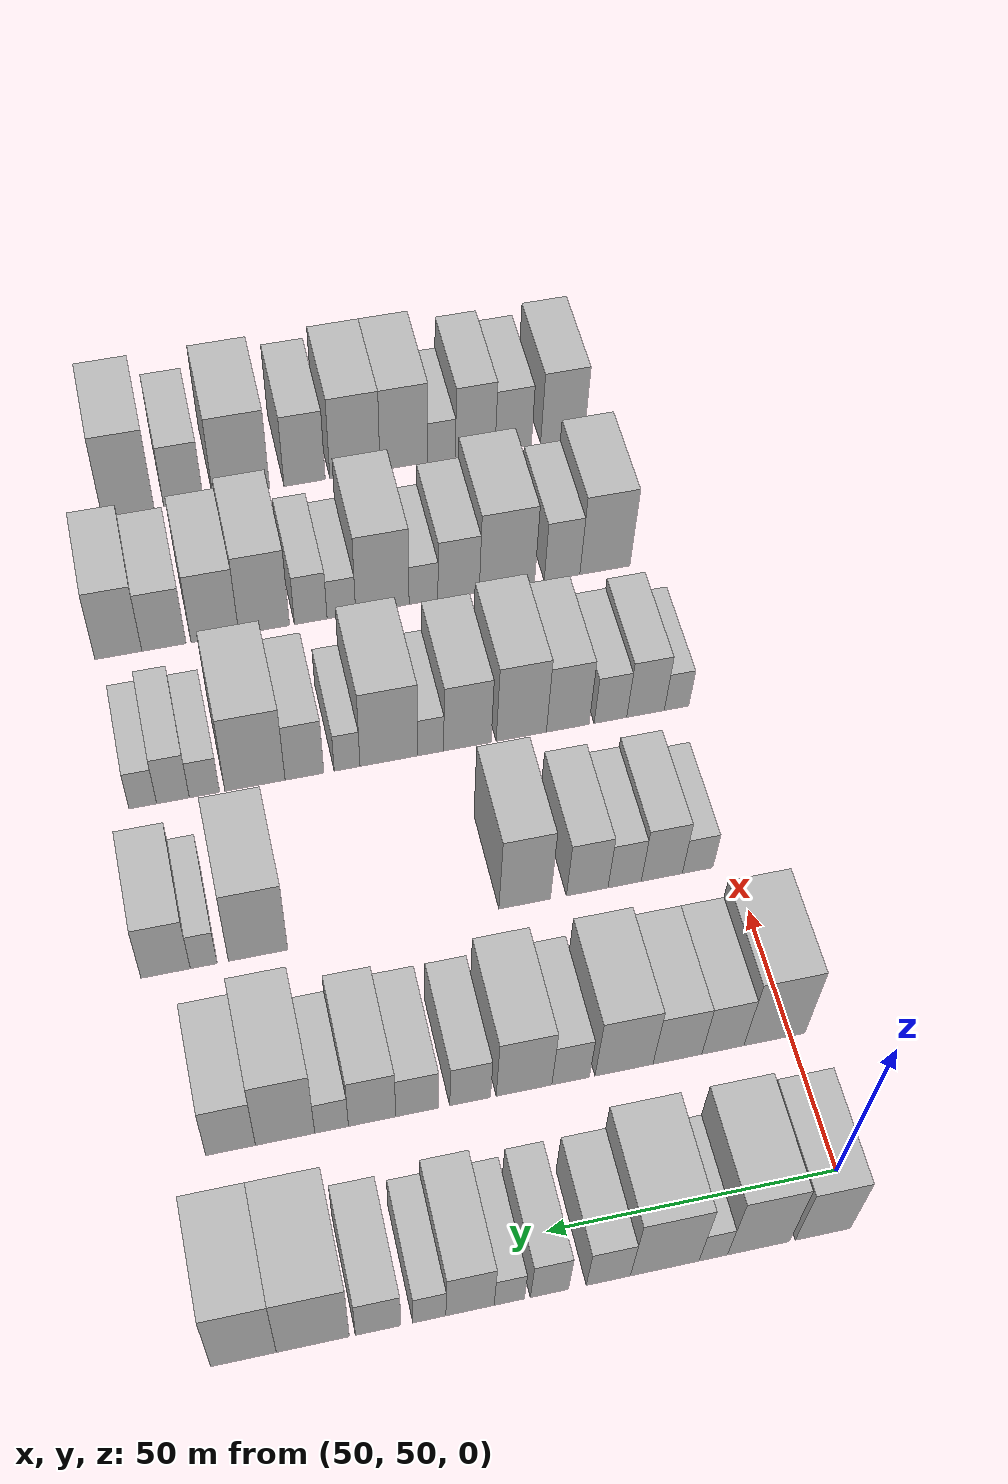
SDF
<sdf version="1.6">
 <world name="default">
  <model name="building_71">
   <static>1</static>
   <pose>50.0000 55.6966 0 0.000000 0.000000 0.000000</pose>
   <link name="link">
    <pose>0 0 10.50 0 0 0</pose>
    <collision name="collision"><geometry><box><size>20.0000 9.4849 21.0000</size></box></geometry></collision>
    <visual name="visual">
     <cast_shadows>0</cast_shadows>
     <geometry><box><size>20.0000 9.4849 21.0000</size></box></geometry>
     <material>
      <script>
       <uri>model://HANNAS_wall/materials/scripts</uri>
       <uri>model://HANNAS_wall/materials/textures</uri>
       <name>vrc/HANNAS_wall</name>
      </script>
     </material>
    </visual>
   </link>
  </model>
  <model name="building_72">
   <static>1</static>
   <pose>50.0000 66.7630 0 0.000000 0.000000 0.000000</pose>
   <link name="link">
    <pose>0 0 12.00 0 0 0</pose>
    <collision name="collision"><geometry><box><size>20.0000 10.6479 24.0000</size></box></geometry></collision>
    <visual name="visual">
     <cast_shadows>0</cast_shadows>
     <geometry><box><size>20.0000 10.6479 24.0000</size></box></geometry>
     <material>
      <script>
       <uri>model://HANNAS_wall/materials/scripts</uri>
       <uri>model://HANNAS_wall/materials/textures</uri>
       <name>vrc/HANNAS_wall</name>
      </script>
     </material>
    </visual>
   </link>
  </model>
  <model name="building_73">
   <static>1</static>
   <pose>50.0000 74.5035 0 0.000000 0.000000 0.000000</pose>
   <link name="link">
    <pose>0 0 6.00 0 0 0</pose>
    <collision name="collision"><geometry><box><size>20.0000 4.8332 12.0000</size></box></geometry></collision>
    <visual name="visual">
     <cast_shadows>0</cast_shadows>
     <geometry><box><size>20.0000 4.8332 12.0000</size></box></geometry>
     <material>
      <script>
       <uri>model://HANNAS_wall/materials/scripts</uri>
       <uri>model://HANNAS_wall/materials/textures</uri>
       <name>vrc/HANNAS_wall</name>
      </script>
     </material>
    </visual>
   </link>
  </model>
  <model name="building_74">
   <static>1</static>
   <pose>50.0000 82.7384 0 0.000000 0.000000 0.000000</pose>
   <link name="link">
    <pose>0 0 12.00 0 0 0</pose>
    <collision name="collision"><geometry><box><size>20.0000 11.6365 24.0000</size></box></geometry></collision>
    <visual name="visual">
     <cast_shadows>0</cast_shadows>
     <geometry><box><size>20.0000 11.6365 24.0000</size></box></geometry>
     <material>
      <script>
       <uri>model://HANNAS_wall/materials/scripts</uri>
       <uri>model://HANNAS_wall/materials/textures</uri>
       <name>vrc/HANNAS_wall</name>
      </script>
     </material>
    </visual>
   </link>
  </model>
  <model name="building_75">
   <static>1</static>
   <pose>50.0000 92.2673 0 0.000000 0.000000 0.000000</pose>
   <link name="link">
    <pose>0 0 7.50 0 0 0</pose>
    <collision name="collision"><geometry><box><size>20.0000 7.4213 15.0000</size></box></geometry></collision>
    <visual name="visual">
     <cast_shadows>0</cast_shadows>
     <geometry><box><size>20.0000 7.4213 15.0000</size></box></geometry>
     <material>
      <script>
       <uri>model://HANNAS_wall/materials/scripts</uri>
       <uri>model://HANNAS_wall/materials/textures</uri>
       <name>vrc/HANNAS_wall</name>
      </script>
     </material>
    </visual>
   </link>
  </model>
  <model name="building_76">
   <static>1</static>
   <pose>50.0000 102.1571 0 0.000000 0.000000 0.000000</pose>
   <link name="link">
    <pose>0 0 7.50 0 0 0</pose>
    <collision name="collision"><geometry><box><size>20.0000 6.3584 15.0000</size></box></geometry></collision>
    <visual name="visual">
     <cast_shadows>0</cast_shadows>
     <geometry><box><size>20.0000 6.3584 15.0000</size></box></geometry>
     <material>
      <script>
       <uri>model://HANNAS_wall/materials/scripts</uri>
       <uri>model://HANNAS_wall/materials/textures</uri>
       <name>vrc/HANNAS_wall</name>
      </script>
     </material>
    </visual>
   </link>
  </model>
  <model name="building_77">
   <static>1</static>
   <pose>50.0000 108.8536 0 0.000000 0.000000 0.000000</pose>
   <link name="link">
    <pose>0 0 6.00 0 0 0</pose>
    <collision name="collision"><geometry><box><size>20.0000 5.0346 12.0000</size></box></geometry></collision>
    <visual name="visual">
     <cast_shadows>0</cast_shadows>
     <geometry><box><size>20.0000 5.0346 12.0000</size></box></geometry>
     <material>
      <script>
       <uri>model://HANNAS_wall/materials/scripts</uri>
       <uri>model://HANNAS_wall/materials/textures</uri>
       <name>vrc/HANNAS_wall</name>
      </script>
     </material>
    </visual>
   </link>
  </model>
  <model name="building_78">
   <static>1</static>
   <pose>50.0000 115.3699 0 0.000000 0.000000 0.000000</pose>
   <link name="link">
    <pose>0 0 9.00 0 0 0</pose>
    <collision name="collision"><geometry><box><size>20.0000 7.9979 18.0000</size></box></geometry></collision>
    <visual name="visual">
     <cast_shadows>0</cast_shadows>
     <geometry><box><size>20.0000 7.9979 18.0000</size></box></geometry>
     <material>
      <script>
       <uri>model://HANNAS_wall/materials/scripts</uri>
       <uri>model://HANNAS_wall/materials/textures</uri>
       <name>vrc/HANNAS_wall</name>
      </script>
     </material>
    </visual>
   </link>
  </model>
  <model name="building_79">
   <static>1</static>
   <pose>50.0000 122.0834 0 0.000000 0.000000 0.000000</pose>
   <link name="link">
    <pose>0 0 6.00 0 0 0</pose>
    <collision name="collision"><geometry><box><size>20.0000 5.4291 12.0000</size></box></geometry></collision>
    <visual name="visual">
     <cast_shadows>0</cast_shadows>
     <geometry><box><size>20.0000 5.4291 12.0000</size></box></geometry>
     <material>
      <script>
       <uri>model://HANNAS_wall/materials/scripts</uri>
       <uri>model://HANNAS_wall/materials/textures</uri>
       <name>vrc/HANNAS_wall</name>
      </script>
     </material>
    </visual>
   </link>
  </model>
  <model name="building_80">
   <static>1</static>
   <pose>50.0000 130.5080 0 0.000000 0.000000 0.000000</pose>
   <link name="link">
    <pose>0 0 7.50 0 0 0</pose>
    <collision name="collision"><geometry><box><size>20.0000 7.4202 15.0000</size></box></geometry></collision>
    <visual name="visual">
     <cast_shadows>0</cast_shadows>
     <geometry><box><size>20.0000 7.4202 15.0000</size></box></geometry>
     <material>
      <script>
       <uri>model://HANNAS_wall/materials/scripts</uri>
       <uri>model://HANNAS_wall/materials/textures</uri>
       <name>vrc/HANNAS_wall</name>
      </script>
     </material>
    </visual>
   </link>
  </model>
  <model name="building_81">
   <static>1</static>
   <pose>50.0000 141.1504 0 0.000000 0.000000 0.000000</pose>
   <link name="link">
    <pose>0 0 12.00 0 0 0</pose>
    <collision name="collision"><geometry><box><size>20.0000 11.8647 24.0000</size></box></geometry></collision>
    <visual name="visual">
     <cast_shadows>0</cast_shadows>
     <geometry><box><size>20.0000 11.8647 24.0000</size></box></geometry>
     <material>
      <script>
       <uri>model://HANNAS_wall/materials/scripts</uri>
       <uri>model://HANNAS_wall/materials/textures</uri>
       <name>vrc/HANNAS_wall</name>
      </script>
     </material>
    </visual>
   </link>
  </model>
  <model name="building_82">
   <static>1</static>
   <pose>50.0000 152.3809 0 0.000000 0.000000 0.000000</pose>
   <link name="link">
    <pose>0 0 12.00 0 0 0</pose>
    <collision name="collision"><geometry><box><size>20.0000 10.5964 24.0000</size></box></geometry></collision>
    <visual name="visual">
     <cast_shadows>0</cast_shadows>
     <geometry><box><size>20.0000 10.5964 24.0000</size></box></geometry>
     <material>
      <script>
       <uri>model://HANNAS_wall/materials/scripts</uri>
       <uri>model://HANNAS_wall/materials/textures</uri>
       <name>vrc/HANNAS_wall</name>
      </script>
     </material>
    </visual>
   </link>
  </model>
  <model name="building_196">
   <static>1</static>
   <pose>85.0000 52.9985 0 0.000000 0.000000 0.000000</pose>
   <link name="link">
    <pose>0 0 12.00 0 0 0</pose>
    <collision name="collision"><geometry><box><size>20.0000 11.0441 24.0000</size></box></geometry></collision>
    <visual name="visual">
     <cast_shadows>0</cast_shadows>
     <geometry><box><size>20.0000 11.0441 24.0000</size></box></geometry>
     <material>
      <script>
       <uri>model://HANNAS_wall/materials/scripts</uri>
       <uri>model://HANNAS_wall/materials/textures</uri>
       <name>vrc/HANNAS_wall</name>
      </script>
     </material>
    </visual>
   </link>
  </model>
  <model name="building_197">
   <static>1</static>
   <pose>85.0000 62.3304 0 0.000000 0.000000 0.000000</pose>
   <link name="link">
    <pose>0 0 9.00 0 0 0</pose>
    <collision name="collision"><geometry><box><size>20.0000 7.6197 18.0000</size></box></geometry></collision>
    <visual name="visual">
     <cast_shadows>0</cast_shadows>
     <geometry><box><size>20.0000 7.6197 18.0000</size></box></geometry>
     <material>
      <script>
       <uri>model://HANNAS_wall/materials/scripts</uri>
       <uri>model://HANNAS_wall/materials/textures</uri>
       <name>vrc/HANNAS_wall</name>
      </script>
     </material>
    </visual>
   </link>
  </model>
  <model name="building_198">
   <static>1</static>
   <pose>85.0000 70.5275 0 0.000000 0.000000 0.000000</pose>
   <link name="link">
    <pose>0 0 9.00 0 0 0</pose>
    <collision name="collision"><geometry><box><size>20.0000 8.7746 18.0000</size></box></geometry></collision>
    <visual name="visual">
     <cast_shadows>0</cast_shadows>
     <geometry><box><size>20.0000 8.7746 18.0000</size></box></geometry>
     <material>
      <script>
       <uri>model://HANNAS_wall/materials/scripts</uri>
       <uri>model://HANNAS_wall/materials/textures</uri>
       <name>vrc/HANNAS_wall</name>
      </script>
     </material>
    </visual>
   </link>
  </model>
  <model name="building_199">
   <static>1</static>
   <pose>85.0000 80.0916 0 0.000000 0.000000 0.000000</pose>
   <link name="link">
    <pose>0 0 10.50 0 0 0</pose>
    <collision name="collision"><geometry><box><size>20.0000 10.3536 21.0000</size></box></geometry></collision>
    <visual name="visual">
     <cast_shadows>0</cast_shadows>
     <geometry><box><size>20.0000 10.3536 21.0000</size></box></geometry>
     <material>
      <script>
       <uri>model://HANNAS_wall/materials/scripts</uri>
       <uri>model://HANNAS_wall/materials/textures</uri>
       <name>vrc/HANNAS_wall</name>
      </script>
     </material>
    </visual>
   </link>
  </model>
  <model name="building_200">
   <static>1</static>
   <pose>85.0000 89.5941 0 0.000000 0.000000 0.000000</pose>
   <link name="link">
    <pose>0 0 7.50 0 0 0</pose>
    <collision name="collision"><geometry><box><size>20.0000 6.6514 15.0000</size></box></geometry></collision>
    <visual name="visual">
     <cast_shadows>0</cast_shadows>
     <geometry><box><size>20.0000 6.6514 15.0000</size></box></geometry>
     <material>
      <script>
       <uri>model://HANNAS_wall/materials/scripts</uri>
       <uri>model://HANNAS_wall/materials/textures</uri>
       <name>vrc/HANNAS_wall</name>
      </script>
     </material>
    </visual>
   </link>
  </model>
  <model name="building_201">
   <static>1</static>
   <pose>85.0000 97.8389 0 0.000000 0.000000 0.000000</pose>
   <link name="link">
    <pose>0 0 10.50 0 0 0</pose>
    <collision name="collision"><geometry><box><size>20.0000 9.8383 21.0000</size></box></geometry></collision>
    <visual name="visual">
     <cast_shadows>0</cast_shadows>
     <geometry><box><size>20.0000 9.8383 21.0000</size></box></geometry>
     <material>
      <script>
       <uri>model://HANNAS_wall/materials/scripts</uri>
       <uri>model://HANNAS_wall/materials/textures</uri>
       <name>vrc/HANNAS_wall</name>
      </script>
     </material>
    </visual>
   </link>
  </model>
  <model name="building_202">
   <static>1</static>
   <pose>85.0000 107.3276 0 0.000000 0.000000 0.000000</pose>
   <link name="link">
    <pose>0 0 7.50 0 0 0</pose>
    <collision name="collision"><geometry><box><size>20.0000 7.1391 15.0000</size></box></geometry></collision>
    <visual name="visual">
     <cast_shadows>0</cast_shadows>
     <geometry><box><size>20.0000 7.1391 15.0000</size></box></geometry>
     <material>
      <script>
       <uri>model://HANNAS_wall/materials/scripts</uri>
       <uri>model://HANNAS_wall/materials/textures</uri>
       <name>vrc/HANNAS_wall</name>
      </script>
     </material>
    </visual>
   </link>
  </model>
  <model name="building_203">
   <static>1</static>
   <pose>85.0000 116.6055 0 0.000000 0.000000 0.000000</pose>
   <link name="link">
    <pose>0 0 7.50 0 0 0</pose>
    <collision name="collision"><geometry><box><size>20.0000 7.4166 15.0000</size></box></geometry></collision>
    <visual name="visual">
     <cast_shadows>0</cast_shadows>
     <geometry><box><size>20.0000 7.4166 15.0000</size></box></geometry>
     <material>
      <script>
       <uri>model://HANNAS_wall/materials/scripts</uri>
       <uri>model://HANNAS_wall/materials/textures</uri>
       <name>vrc/HANNAS_wall</name>
      </script>
     </material>
    </visual>
   </link>
  </model>
  <model name="building_204">
   <static>1</static>
   <pose>85.0000 124.4098 0 0.000000 0.000000 0.000000</pose>
   <link name="link">
    <pose>0 0 9.00 0 0 0</pose>
    <collision name="collision"><geometry><box><size>20.0000 8.1921 18.0000</size></box></geometry></collision>
    <visual name="visual">
     <cast_shadows>0</cast_shadows>
     <geometry><box><size>20.0000 8.1921 18.0000</size></box></geometry>
     <material>
      <script>
       <uri>model://HANNAS_wall/materials/scripts</uri>
       <uri>model://HANNAS_wall/materials/textures</uri>
       <name>vrc/HANNAS_wall</name>
      </script>
     </material>
    </visual>
   </link>
  </model>
  <model name="building_205">
   <static>1</static>
   <pose>85.0000 131.4132 0 0.000000 0.000000 0.000000</pose>
   <link name="link">
    <pose>0 0 6.00 0 0 0</pose>
    <collision name="collision"><geometry><box><size>20.0000 5.8146 12.0000</size></box></geometry></collision>
    <visual name="visual">
     <cast_shadows>0</cast_shadows>
     <geometry><box><size>20.0000 5.8146 12.0000</size></box></geometry>
     <material>
      <script>
       <uri>model://HANNAS_wall/materials/scripts</uri>
       <uri>model://HANNAS_wall/materials/textures</uri>
       <name>vrc/HANNAS_wall</name>
      </script>
     </material>
    </visual>
   </link>
  </model>
  <model name="building_206">
   <static>1</static>
   <pose>85.0000 139.4141 0 0.000000 0.000000 0.000000</pose>
   <link name="link">
    <pose>0 0 12.00 0 0 0</pose>
    <collision name="collision"><geometry><box><size>20.0000 10.1872 24.0000</size></box></geometry></collision>
    <visual name="visual">
     <cast_shadows>0</cast_shadows>
     <geometry><box><size>20.0000 10.1872 24.0000</size></box></geometry>
     <material>
      <script>
       <uri>model://HANNAS_wall/materials/scripts</uri>
       <uri>model://HANNAS_wall/materials/textures</uri>
       <name>vrc/HANNAS_wall</name>
      </script>
     </material>
    </visual>
   </link>
  </model>
  <model name="building_207">
   <static>1</static>
   <pose>85.0000 148.7389 0 0.000000 0.000000 0.000000</pose>
   <link name="link">
    <pose>0 0 9.00 0 0 0</pose>
    <collision name="collision"><geometry><box><size>20.0000 8.4624 18.0000</size></box></geometry></collision>
    <visual name="visual">
     <cast_shadows>0</cast_shadows>
     <geometry><box><size>20.0000 8.4624 18.0000</size></box></geometry>
     <material>
      <script>
       <uri>model://HANNAS_wall/materials/scripts</uri>
       <uri>model://HANNAS_wall/materials/textures</uri>
       <name>vrc/HANNAS_wall</name>
      </script>
     </material>
    </visual>
   </link>
  </model>
  <model name="building_325">
   <static>1</static>
   <pose>120.0000 56.6348 0 0.000000 0.000000 0.000000</pose>
   <link name="link">
    <pose>0 0 6.00 0 0 0</pose>
    <collision name="collision"><geometry><box><size>20.0000 5.7928 12.0000</size></box></geometry></collision>
    <visual name="visual">
     <cast_shadows>0</cast_shadows>
     <geometry><box><size>20.0000 5.7928 12.0000</size></box></geometry>
     <material>
      <script>
       <uri>model://HANNAS_wall/materials/scripts</uri>
       <uri>model://HANNAS_wall/materials/textures</uri>
       <name>vrc/HANNAS_wall</name>
      </script>
     </material>
    </visual>
   </link>
  </model>
  <model name="building_326">
   <static>1</static>
   <pose>120.0000 63.4147 0 0.000000 0.000000 0.000000</pose>
   <link name="link">
    <pose>0 0 9.00 0 0 0</pose>
    <collision name="collision"><geometry><box><size>20.0000 7.7671 18.0000</size></box></geometry></collision>
    <visual name="visual">
     <cast_shadows>0</cast_shadows>
     <geometry><box><size>20.0000 7.7671 18.0000</size></box></geometry>
     <material>
      <script>
       <uri>model://HANNAS_wall/materials/scripts</uri>
       <uri>model://HANNAS_wall/materials/textures</uri>
       <name>vrc/HANNAS_wall</name>
      </script>
     </material>
    </visual>
   </link>
  </model>
  <model name="building_327">
   <static>1</static>
   <pose>120.0000 70.4379 0 0.000000 0.000000 0.000000</pose>
   <link name="link">
    <pose>0 0 7.50 0 0 0</pose>
    <collision name="collision"><geometry><box><size>20.0000 6.2793 15.0000</size></box></geometry></collision>
    <visual name="visual">
     <cast_shadows>0</cast_shadows>
     <geometry><box><size>20.0000 6.2793 15.0000</size></box></geometry>
     <material>
      <script>
       <uri>model://HANNAS_wall/materials/scripts</uri>
       <uri>model://HANNAS_wall/materials/textures</uri>
       <name>vrc/HANNAS_wall</name>
      </script>
     </material>
    </visual>
   </link>
  </model>
  <model name="building_328">
   <static>1</static>
   <pose>120.0000 77.4754 0 0.000000 0.000000 0.000000</pose>
   <link name="link">
    <pose>0 0 9.00 0 0 0</pose>
    <collision name="collision"><geometry><box><size>20.0000 7.7956 18.0000</size></box></geometry></collision>
    <visual name="visual">
     <cast_shadows>0</cast_shadows>
     <geometry><box><size>20.0000 7.7956 18.0000</size></box></geometry>
     <material>
      <script>
       <uri>model://HANNAS_wall/materials/scripts</uri>
       <uri>model://HANNAS_wall/materials/textures</uri>
       <name>vrc/HANNAS_wall</name>
      </script>
     </material>
    </visual>
   </link>
  </model>
  <model name="building_329">
   <static>1</static>
   <pose>120.0000 89.1741 0 0.000000 0.000000 0.000000</pose>
   <link name="link">
    <pose>0 0 12.00 0 0 0</pose>
    <collision name="collision"><geometry><box><size>20.0000 9.6018 24.0000</size></box></geometry></collision>
    <visual name="visual">
     <cast_shadows>0</cast_shadows>
     <geometry><box><size>20.0000 9.6018 24.0000</size></box></geometry>
     <material>
      <script>
       <uri>model://HANNAS_wall/materials/scripts</uri>
       <uri>model://HANNAS_wall/materials/textures</uri>
       <name>vrc/HANNAS_wall</name>
      </script>
     </material>
    </visual>
   </link>
  </model>
  <model name="building_330">
   <static>1</static>
   <pose>120.0000 138.0503 0 0.000000 0.000000 0.000000</pose>
   <link name="link">
    <pose>0 0 12.00 0 0 0</pose>
    <collision name="collision"><geometry><box><size>20.0000 10.7169 24.0000</size></box></geometry></collision>
    <visual name="visual">
     <cast_shadows>0</cast_shadows>
     <geometry><box><size>20.0000 10.7169 24.0000</size></box></geometry>
     <material>
      <script>
       <uri>model://HANNAS_wall/materials/scripts</uri>
       <uri>model://HANNAS_wall/materials/textures</uri>
       <name>vrc/HANNAS_wall</name>
      </script>
     </material>
    </visual>
   </link>
  </model>
  <model name="building_331">
   <static>1</static>
   <pose>120.0000 147.8315 0 0.000000 0.000000 0.000000</pose>
   <link name="link">
    <pose>0 0 6.00 0 0 0</pose>
    <collision name="collision"><geometry><box><size>20.0000 4.8455 12.0000</size></box></geometry></collision>
    <visual name="visual">
     <cast_shadows>0</cast_shadows>
     <geometry><box><size>20.0000 4.8455 12.0000</size></box></geometry>
     <material>
      <script>
       <uri>model://HANNAS_wall/materials/scripts</uri>
       <uri>model://HANNAS_wall/materials/textures</uri>
       <name>vrc/HANNAS_wall</name>
      </script>
     </material>
    </visual>
   </link>
  </model>
  <model name="building_332">
   <static>1</static>
   <pose>120.0000 154.6683 0 0.000000 0.000000 0.000000</pose>
   <link name="link">
    <pose>0 0 9.00 0 0 0</pose>
    <collision name="collision"><geometry><box><size>20.0000 8.8281 18.0000</size></box></geometry></collision>
    <visual name="visual">
     <cast_shadows>0</cast_shadows>
     <geometry><box><size>20.0000 8.8281 18.0000</size></box></geometry>
     <material>
      <script>
       <uri>model://HANNAS_wall/materials/scripts</uri>
       <uri>model://HANNAS_wall/materials/textures</uri>
       <name>vrc/HANNAS_wall</name>
      </script>
     </material>
    </visual>
   </link>
  </model>
  <model name="building_437">
   <static>1</static>
   <pose>155.0000 50.5708 0 0.000000 0.000000 0.000000</pose>
   <link name="link">
    <pose>0 0 6.00 0 0 0</pose>
    <collision name="collision"><geometry><box><size>20.0000 4.8694 12.0000</size></box></geometry></collision>
    <visual name="visual">
     <cast_shadows>0</cast_shadows>
     <geometry><box><size>20.0000 4.8694 12.0000</size></box></geometry>
     <material>
      <script>
       <uri>model://HANNAS_wall/materials/scripts</uri>
       <uri>model://HANNAS_wall/materials/textures</uri>
       <name>vrc/HANNAS_wall</name>
      </script>
     </material>
    </visual>
   </link>
  </model>
  <model name="building_438">
   <static>1</static>
   <pose>155.0000 56.7395 0 0.000000 0.000000 0.000000</pose>
   <link name="link">
    <pose>0 0 9.00 0 0 0</pose>
    <collision name="collision"><geometry><box><size>20.0000 7.4681 18.0000</size></box></geometry></collision>
    <visual name="visual">
     <cast_shadows>0</cast_shadows>
     <geometry><box><size>20.0000 7.4681 18.0000</size></box></geometry>
     <material>
      <script>
       <uri>model://HANNAS_wall/materials/scripts</uri>
       <uri>model://HANNAS_wall/materials/textures</uri>
       <name>vrc/HANNAS_wall</name>
      </script>
     </material>
    </visual>
   </link>
  </model>
  <model name="building_439">
   <static>1</static>
   <pose>155.0000 63.7088 0 0.000000 0.000000 0.000000</pose>
   <link name="link">
    <pose>0 0 7.50 0 0 0</pose>
    <collision name="collision"><geometry><box><size>20.0000 6.4704 15.0000</size></box></geometry></collision>
    <visual name="visual">
     <cast_shadows>0</cast_shadows>
     <geometry><box><size>20.0000 6.4704 15.0000</size></box></geometry>
     <material>
      <script>
       <uri>model://HANNAS_wall/materials/scripts</uri>
       <uri>model://HANNAS_wall/materials/textures</uri>
       <name>vrc/HANNAS_wall</name>
      </script>
     </material>
    </visual>
   </link>
  </model>
  <model name="building_440">
   <static>1</static>
   <pose>155.0000 72.1477 0 0.000000 0.000000 0.000000</pose>
   <link name="link">
    <pose>0 0 10.50 0 0 0</pose>
    <collision name="collision"><geometry><box><size>20.0000 8.4074 21.0000</size></box></geometry></collision>
    <visual name="visual">
     <cast_shadows>0</cast_shadows>
     <geometry><box><size>20.0000 8.4074 21.0000</size></box></geometry>
     <material>
      <script>
       <uri>model://HANNAS_wall/materials/scripts</uri>
       <uri>model://HANNAS_wall/materials/textures</uri>
       <name>vrc/HANNAS_wall</name>
      </script>
     </material>
    </visual>
   </link>
  </model>
  <model name="building_441">
   <static>1</static>
   <pose>155.0000 81.2697 0 0.000000 0.000000 0.000000</pose>
   <link name="link">
    <pose>0 0 12.00 0 0 0</pose>
    <collision name="collision"><geometry><box><size>20.0000 9.8365 24.0000</size></box></geometry></collision>
    <visual name="visual">
     <cast_shadows>0</cast_shadows>
     <geometry><box><size>20.0000 9.8365 24.0000</size></box></geometry>
     <material>
      <script>
       <uri>model://HANNAS_wall/materials/scripts</uri>
       <uri>model://HANNAS_wall/materials/textures</uri>
       <name>vrc/HANNAS_wall</name>
      </script>
     </material>
    </visual>
   </link>
  </model>
  <model name="building_442">
   <static>1</static>
   <pose>155.0000 91.8143 0 0.000000 0.000000 0.000000</pose>
   <link name="link">
    <pose>0 0 10.50 0 0 0</pose>
    <collision name="collision"><geometry><box><size>20.0000 9.2526 21.0000</size></box></geometry></collision>
    <visual name="visual">
     <cast_shadows>0</cast_shadows>
     <geometry><box><size>20.0000 9.2526 21.0000</size></box></geometry>
     <material>
      <script>
       <uri>model://HANNAS_wall/materials/scripts</uri>
       <uri>model://HANNAS_wall/materials/textures</uri>
       <name>vrc/HANNAS_wall</name>
      </script>
     </material>
    </visual>
   </link>
  </model>
  <model name="building_443">
   <static>1</static>
   <pose>155.0000 98.9667 0 0.000000 0.000000 0.000000</pose>
   <link name="link">
    <pose>0 0 6.00 0 0 0</pose>
    <collision name="collision"><geometry><box><size>20.0000 5.0522 12.0000</size></box></geometry></collision>
    <visual name="visual">
     <cast_shadows>0</cast_shadows>
     <geometry><box><size>20.0000 5.0522 12.0000</size></box></geometry>
     <material>
      <script>
       <uri>model://HANNAS_wall/materials/scripts</uri>
       <uri>model://HANNAS_wall/materials/textures</uri>
       <name>vrc/HANNAS_wall</name>
      </script>
     </material>
    </visual>
   </link>
  </model>
  <model name="building_444">
   <static>1</static>
   <pose>155.0000 107.0385 0 0.000000 0.000000 0.000000</pose>
   <link name="link">
    <pose>0 0 12.00 0 0 0</pose>
    <collision name="collision"><geometry><box><size>20.0000 11.0914 24.0000</size></box></geometry></collision>
    <visual name="visual">
     <cast_shadows>0</cast_shadows>
     <geometry><box><size>20.0000 11.0914 24.0000</size></box></geometry>
     <material>
      <script>
       <uri>model://HANNAS_wall/materials/scripts</uri>
       <uri>model://HANNAS_wall/materials/textures</uri>
       <name>vrc/HANNAS_wall</name>
      </script>
     </material>
    </visual>
   </link>
  </model>
  <model name="building_445">
   <static>1</static>
   <pose>155.0000 115.0608 0 0.000000 0.000000 0.000000</pose>
   <link name="link">
    <pose>0 0 6.00 0 0 0</pose>
    <collision name="collision"><geometry><box><size>20.0000 4.9531 12.0000</size></box></geometry></collision>
    <visual name="visual">
     <cast_shadows>0</cast_shadows>
     <geometry><box><size>20.0000 4.9531 12.0000</size></box></geometry>
     <material>
      <script>
       <uri>model://HANNAS_wall/materials/scripts</uri>
       <uri>model://HANNAS_wall/materials/textures</uri>
       <name>vrc/HANNAS_wall</name>
      </script>
     </material>
    </visual>
   </link>
  </model>
  <model name="building_446">
   <static>1</static>
   <pose>155.0000 123.2310 0 0.000000 0.000000 0.000000</pose>
   <link name="link">
    <pose>0 0 9.00 0 0 0</pose>
    <collision name="collision"><geometry><box><size>20.0000 7.3873 18.0000</size></box></geometry></collision>
    <visual name="visual">
     <cast_shadows>0</cast_shadows>
     <geometry><box><size>20.0000 7.3873 18.0000</size></box></geometry>
     <material>
      <script>
       <uri>model://HANNAS_wall/materials/scripts</uri>
       <uri>model://HANNAS_wall/materials/textures</uri>
       <name>vrc/HANNAS_wall</name>
      </script>
     </material>
    </visual>
   </link>
  </model>
  <model name="building_447">
   <static>1</static>
   <pose>155.0000 132.6455 0 0.000000 0.000000 0.000000</pose>
   <link name="link">
    <pose>0 0 12.00 0 0 0</pose>
    <collision name="collision"><geometry><box><size>20.0000 11.4415 24.0000</size></box></geometry></collision>
    <visual name="visual">
     <cast_shadows>0</cast_shadows>
     <geometry><box><size>20.0000 11.4415 24.0000</size></box></geometry>
     <material>
      <script>
       <uri>model://HANNAS_wall/materials/scripts</uri>
       <uri>model://HANNAS_wall/materials/textures</uri>
       <name>vrc/HANNAS_wall</name>
      </script>
     </material>
    </visual>
   </link>
  </model>
  <model name="building_448">
   <static>1</static>
   <pose>155.0000 142.2230 0 0.000000 0.000000 0.000000</pose>
   <link name="link">
    <pose>0 0 6.00 0 0 0</pose>
    <collision name="collision"><geometry><box><size>20.0000 5.7136 12.0000</size></box></geometry></collision>
    <visual name="visual">
     <cast_shadows>0</cast_shadows>
     <geometry><box><size>20.0000 5.7136 12.0000</size></box></geometry>
     <material>
      <script>
       <uri>model://HANNAS_wall/materials/scripts</uri>
       <uri>model://HANNAS_wall/materials/textures</uri>
       <name>vrc/HANNAS_wall</name>
      </script>
     </material>
    </visual>
   </link>
  </model>
  <model name="building_449">
   <static>1</static>
   <pose>155.0000 148.1592 0 0.000000 0.000000 0.000000</pose>
   <link name="link">
    <pose>0 0 7.50 0 0 0</pose>
    <collision name="collision"><geometry><box><size>20.0000 6.1588 15.0000</size></box></geometry></collision>
    <visual name="visual">
     <cast_shadows>0</cast_shadows>
     <geometry><box><size>20.0000 6.1588 15.0000</size></box></geometry>
     <material>
      <script>
       <uri>model://HANNAS_wall/materials/scripts</uri>
       <uri>model://HANNAS_wall/materials/textures</uri>
       <name>vrc/HANNAS_wall</name>
      </script>
     </material>
    </visual>
   </link>
  </model>
  <model name="building_450">
   <static>1</static>
   <pose>155.0000 153.8464 0 0.000000 0.000000 0.000000</pose>
   <link name="link">
    <pose>0 0 6.00 0 0 0</pose>
    <collision name="collision"><geometry><box><size>20.0000 5.2157 12.0000</size></box></geometry></collision>
    <visual name="visual">
     <cast_shadows>0</cast_shadows>
     <geometry><box><size>20.0000 5.2157 12.0000</size></box></geometry>
     <material>
      <script>
       <uri>model://HANNAS_wall/materials/scripts</uri>
       <uri>model://HANNAS_wall/materials/textures</uri>
       <name>vrc/HANNAS_wall</name>
      </script>
     </material>
    </visual>
   </link>
  </model>
  <model name="building_561">
   <static>1</static>
   <pose>190.0000 55.4667 0 0.000000 0.000000 0.000000</pose>
   <link name="link">
    <pose>0 0 12.00 0 0 0</pose>
    <collision name="collision"><geometry><box><size>20.0000 10.3940 24.0000</size></box></geometry></collision>
    <visual name="visual">
     <cast_shadows>0</cast_shadows>
     <geometry><box><size>20.0000 10.3940 24.0000</size></box></geometry>
     <material>
      <script>
       <uri>model://HANNAS_wall/materials/scripts</uri>
       <uri>model://HANNAS_wall/materials/textures</uri>
       <name>vrc/HANNAS_wall</name>
      </script>
     </material>
    </visual>
   </link>
  </model>
  <model name="building_562">
   <static>1</static>
   <pose>190.0000 64.3476 0 0.000000 0.000000 0.000000</pose>
   <link name="link">
    <pose>0 0 9.00 0 0 0</pose>
    <collision name="collision"><geometry><box><size>20.0000 7.3678 18.0000</size></box></geometry></collision>
    <visual name="visual">
     <cast_shadows>0</cast_shadows>
     <geometry><box><size>20.0000 7.3678 18.0000</size></box></geometry>
     <material>
      <script>
       <uri>model://HANNAS_wall/materials/scripts</uri>
       <uri>model://HANNAS_wall/materials/textures</uri>
       <name>vrc/HANNAS_wall</name>
      </script>
     </material>
    </visual>
   </link>
  </model>
  <model name="building_563">
   <static>1</static>
   <pose>190.0000 75.7024 0 0.000000 0.000000 0.000000</pose>
   <link name="link">
    <pose>0 0 12.00 0 0 0</pose>
    <collision name="collision"><geometry><box><size>20.0000 11.3418 24.0000</size></box></geometry></collision>
    <visual name="visual">
     <cast_shadows>0</cast_shadows>
     <geometry><box><size>20.0000 11.3418 24.0000</size></box></geometry>
     <material>
      <script>
       <uri>model://HANNAS_wall/materials/scripts</uri>
       <uri>model://HANNAS_wall/materials/textures</uri>
       <name>vrc/HANNAS_wall</name>
      </script>
     </material>
    </visual>
   </link>
  </model>
  <model name="building_564">
   <static>1</static>
   <pose>190.0000 85.6065 0 0.000000 0.000000 0.000000</pose>
   <link name="link">
    <pose>0 0 9.00 0 0 0</pose>
    <collision name="collision"><geometry><box><size>20.0000 8.4663 18.0000</size></box></geometry></collision>
    <visual name="visual">
     <cast_shadows>0</cast_shadows>
     <geometry><box><size>20.0000 8.4663 18.0000</size></box></geometry>
     <material>
      <script>
       <uri>model://HANNAS_wall/materials/scripts</uri>
       <uri>model://HANNAS_wall/materials/textures</uri>
       <name>vrc/HANNAS_wall</name>
      </script>
     </material>
    </visual>
   </link>
  </model>
  <model name="building_565">
   <static>1</static>
   <pose>190.0000 92.7640 0 0.000000 0.000000 0.000000</pose>
   <link name="link">
    <pose>0 0 6.00 0 0 0</pose>
    <collision name="collision"><geometry><box><size>20.0000 5.8487 12.0000</size></box></geometry></collision>
    <visual name="visual">
     <cast_shadows>0</cast_shadows>
     <geometry><box><size>20.0000 5.8487 12.0000</size></box></geometry>
     <material>
      <script>
       <uri>model://HANNAS_wall/materials/scripts</uri>
       <uri>model://HANNAS_wall/materials/textures</uri>
       <name>vrc/HANNAS_wall</name>
      </script>
     </material>
    </visual>
   </link>
  </model>
  <model name="building_566">
   <static>1</static>
   <pose>190.0000 101.0931 0 0.000000 0.000000 0.000000</pose>
   <link name="link">
    <pose>0 0 12.00 0 0 0</pose>
    <collision name="collision"><geometry><box><size>20.0000 10.8094 24.0000</size></box></geometry></collision>
    <visual name="visual">
     <cast_shadows>0</cast_shadows>
     <geometry><box><size>20.0000 10.8094 24.0000</size></box></geometry>
     <material>
      <script>
       <uri>model://HANNAS_wall/materials/scripts</uri>
       <uri>model://HANNAS_wall/materials/textures</uri>
       <name>vrc/HANNAS_wall</name>
      </script>
     </material>
    </visual>
   </link>
  </model>
  <model name="building_567">
   <static>1</static>
   <pose>190.0000 109.3752 0 0.000000 0.000000 0.000000</pose>
   <link name="link">
    <pose>0 0 6.00 0 0 0</pose>
    <collision name="collision"><geometry><box><size>20.0000 5.7548 12.0000</size></box></geometry></collision>
    <visual name="visual">
     <cast_shadows>0</cast_shadows>
     <geometry><box><size>20.0000 5.7548 12.0000</size></box></geometry>
     <material>
      <script>
       <uri>model://HANNAS_wall/materials/scripts</uri>
       <uri>model://HANNAS_wall/materials/textures</uri>
       <name>vrc/HANNAS_wall</name>
      </script>
     </material>
    </visual>
   </link>
  </model>
  <model name="building_568">
   <static>1</static>
   <pose>190.0000 115.5260 0 0.000000 0.000000 0.000000</pose>
   <link name="link">
    <pose>0 0 7.50 0 0 0</pose>
    <collision name="collision"><geometry><box><size>20.0000 6.5469 15.0000</size></box></geometry></collision>
    <visual name="visual">
     <cast_shadows>0</cast_shadows>
     <geometry><box><size>20.0000 6.5469 15.0000</size></box></geometry>
     <material>
      <script>
       <uri>model://HANNAS_wall/materials/scripts</uri>
       <uri>model://HANNAS_wall/materials/textures</uri>
       <name>vrc/HANNAS_wall</name>
      </script>
     </material>
    </visual>
   </link>
  </model>
  <model name="building_569">
   <static>1</static>
   <pose>190.0000 124.8566 0 0.000000 0.000000 0.000000</pose>
   <link name="link">
    <pose>0 0 12.00 0 0 0</pose>
    <collision name="collision"><geometry><box><size>20.0000 10.1143 24.0000</size></box></geometry></collision>
    <visual name="visual">
     <cast_shadows>0</cast_shadows>
     <geometry><box><size>20.0000 10.1143 24.0000</size></box></geometry>
     <material>
      <script>
       <uri>model://HANNAS_wall/materials/scripts</uri>
       <uri>model://HANNAS_wall/materials/textures</uri>
       <name>vrc/HANNAS_wall</name>
      </script>
     </material>
    </visual>
   </link>
  </model>
  <model name="building_570">
   <static>1</static>
   <pose>190.0000 134.6586 0 0.000000 0.000000 0.000000</pose>
   <link name="link">
    <pose>0 0 10.50 0 0 0</pose>
    <collision name="collision"><geometry><box><size>20.0000 9.4897 21.0000</size></box></geometry></collision>
    <visual name="visual">
     <cast_shadows>0</cast_shadows>
     <geometry><box><size>20.0000 9.4897 21.0000</size></box></geometry>
     <material>
      <script>
       <uri>model://HANNAS_wall/materials/scripts</uri>
       <uri>model://HANNAS_wall/materials/textures</uri>
       <name>vrc/HANNAS_wall</name>
      </script>
     </material>
    </visual>
   </link>
  </model>
  <model name="building_571">
   <static>1</static>
   <pose>190.0000 144.7688 0 0.000000 0.000000 0.000000</pose>
   <link name="link">
    <pose>0 0 9.00 0 0 0</pose>
    <collision name="collision"><geometry><box><size>20.0000 8.7308 18.0000</size></box></geometry></collision>
    <visual name="visual">
     <cast_shadows>0</cast_shadows>
     <geometry><box><size>20.0000 8.7308 18.0000</size></box></geometry>
     <material>
      <script>
       <uri>model://HANNAS_wall/materials/scripts</uri>
       <uri>model://HANNAS_wall/materials/textures</uri>
       <name>vrc/HANNAS_wall</name>
      </script>
     </material>
    </visual>
   </link>
  </model>
  <model name="building_572">
   <static>1</static>
   <pose>190.0000 153.7579 0 0.000000 0.000000 0.000000</pose>
   <link name="link">
    <pose>0 0 10.50 0 0 0</pose>
    <collision name="collision"><geometry><box><size>20.0000 9.2473 21.0000</size></box></geometry></collision>
    <visual name="visual">
     <cast_shadows>0</cast_shadows>
     <geometry><box><size>20.0000 9.2473 21.0000</size></box></geometry>
     <material>
      <script>
       <uri>model://HANNAS_wall/materials/scripts</uri>
       <uri>model://HANNAS_wall/materials/textures</uri>
       <name>vrc/HANNAS_wall</name>
      </script>
     </material>
    </visual>
   </link>
  </model>
  <model name="building_693">
   <static>1</static>
   <pose>225.0000 55.3454 0 0.000000 0.000000 0.000000</pose>
   <link name="link">
    <pose>0 0 10.50 0 0 0</pose>
    <collision name="collision"><geometry><box><size>20.0000 9.4449 21.0000</size></box></geometry></collision>
    <visual name="visual">
     <cast_shadows>0</cast_shadows>
     <geometry><box><size>20.0000 9.4449 21.0000</size></box></geometry>
     <material>
      <script>
       <uri>model://HANNAS_wall/materials/scripts</uri>
       <uri>model://HANNAS_wall/materials/textures</uri>
       <name>vrc/HANNAS_wall</name>
      </script>
     </material>
    </visual>
   </link>
  </model>
  <model name="building_694">
   <static>1</static>
   <pose>225.0000 65.9819 0 0.000000 0.000000 0.000000</pose>
   <link name="link">
    <pose>0 0 9.00 0 0 0</pose>
    <collision name="collision"><geometry><box><size>20.0000 7.8281 18.0000</size></box></geometry></collision>
    <visual name="visual">
     <cast_shadows>0</cast_shadows>
     <geometry><box><size>20.0000 7.8281 18.0000</size></box></geometry>
     <material>
      <script>
       <uri>model://HANNAS_wall/materials/scripts</uri>
       <uri>model://HANNAS_wall/materials/textures</uri>
       <name>vrc/HANNAS_wall</name>
      </script>
     </material>
    </visual>
   </link>
  </model>
  <model name="building_695">
   <static>1</static>
   <pose>225.0000 74.1517 0 0.000000 0.000000 0.000000</pose>
   <link name="link">
    <pose>0 0 10.50 0 0 0</pose>
    <collision name="collision"><geometry><box><size>20.0000 8.5115 21.0000</size></box></geometry></collision>
    <visual name="visual">
     <cast_shadows>0</cast_shadows>
     <geometry><box><size>20.0000 8.5115 21.0000</size></box></geometry>
     <material>
      <script>
       <uri>model://HANNAS_wall/materials/scripts</uri>
       <uri>model://HANNAS_wall/materials/textures</uri>
       <name>vrc/HANNAS_wall</name>
      </script>
     </material>
    </visual>
   </link>
  </model>
  <model name="building_696">
   <static>1</static>
   <pose>225.0000 81.3400 0 0.000000 0.000000 0.000000</pose>
   <link name="link">
    <pose>0 0 6.00 0 0 0</pose>
    <collision name="collision"><geometry><box><size>20.0000 5.8651 12.0000</size></box></geometry></collision>
    <visual name="visual">
     <cast_shadows>0</cast_shadows>
     <geometry><box><size>20.0000 5.8651 12.0000</size></box></geometry>
     <material>
      <script>
       <uri>model://HANNAS_wall/materials/scripts</uri>
       <uri>model://HANNAS_wall/materials/textures</uri>
       <name>vrc/HANNAS_wall</name>
      </script>
     </material>
    </visual>
   </link>
  </model>
  <model name="building_697">
   <static>1</static>
   <pose>225.0000 89.3519 0 0.000000 0.000000 0.000000</pose>
   <link name="link">
    <pose>0 0 12.00 0 0 0</pose>
    <collision name="collision"><geometry><box><size>20.0000 10.1588 24.0000</size></box></geometry></collision>
    <visual name="visual">
     <cast_shadows>0</cast_shadows>
     <geometry><box><size>20.0000 10.1588 24.0000</size></box></geometry>
     <material>
      <script>
       <uri>model://HANNAS_wall/materials/scripts</uri>
       <uri>model://HANNAS_wall/materials/textures</uri>
       <name>vrc/HANNAS_wall</name>
      </script>
     </material>
    </visual>
   </link>
  </model>
  <model name="building_698">
   <static>1</static>
   <pose>225.0000 99.7214 0 0.000000 0.000000 0.000000</pose>
   <link name="link">
    <pose>0 0 12.00 0 0 0</pose>
    <collision name="collision"><geometry><box><size>20.0000 10.5802 24.0000</size></box></geometry></collision>
    <visual name="visual">
     <cast_shadows>0</cast_shadows>
     <geometry><box><size>20.0000 10.5802 24.0000</size></box></geometry>
     <material>
      <script>
       <uri>model://HANNAS_wall/materials/scripts</uri>
       <uri>model://HANNAS_wall/materials/textures</uri>
       <name>vrc/HANNAS_wall</name>
      </script>
     </material>
    </visual>
   </link>
  </model>
  <model name="building_699">
   <static>1</static>
   <pose>225.0000 110.3402 0 0.000000 0.000000 0.000000</pose>
   <link name="link">
    <pose>0 0 10.50 0 0 0</pose>
    <collision name="collision"><geometry><box><size>20.0000 8.6575 21.0000</size></box></geometry></collision>
    <visual name="visual">
     <cast_shadows>0</cast_shadows>
     <geometry><box><size>20.0000 8.6575 21.0000</size></box></geometry>
     <material>
      <script>
       <uri>model://HANNAS_wall/materials/scripts</uri>
       <uri>model://HANNAS_wall/materials/textures</uri>
       <name>vrc/HANNAS_wall</name>
      </script>
     </material>
    </visual>
   </link>
  </model>
  <model name="building_700">
   <static>1</static>
   <pose>225.0000 123.5872 0 0.000000 0.000000 0.000000</pose>
   <link name="link">
    <pose>0 0 12.00 0 0 0</pose>
    <collision name="collision"><geometry><box><size>20.0000 11.8364 24.0000</size></box></geometry></collision>
    <visual name="visual">
     <cast_shadows>0</cast_shadows>
     <geometry><box><size>20.0000 11.8364 24.0000</size></box></geometry>
     <material>
      <script>
       <uri>model://HANNAS_wall/materials/scripts</uri>
       <uri>model://HANNAS_wall/materials/textures</uri>
       <name>vrc/HANNAS_wall</name>
      </script>
     </material>
    </visual>
   </link>
  </model>
  <model name="building_701">
   <static>1</static>
   <pose>225.0000 135.6163 0 0.000000 0.000000 0.000000</pose>
   <link name="link">
    <pose>0 0 9.00 0 0 0</pose>
    <collision name="collision"><geometry><box><size>20.0000 8.2220 18.0000</size></box></geometry></collision>
    <visual name="visual">
     <cast_shadows>0</cast_shadows>
     <geometry><box><size>20.0000 8.2220 18.0000</size></box></geometry>
     <material>
      <script>
       <uri>model://HANNAS_wall/materials/scripts</uri>
       <uri>model://HANNAS_wall/materials/textures</uri>
       <name>vrc/HANNAS_wall</name>
      </script>
     </material>
    </visual>
   </link>
  </model>
  <model name="building_702">
   <static>1</static>
   <pose>225.0000 147.0925 0 0.000000 0.000000 0.000000</pose>
   <link name="link">
    <pose>0 0 12.00 0 0 0</pose>
    <collision name="collision"><geometry><box><size>20.0000 10.7303 24.0000</size></box></geometry></collision>
    <visual name="visual">
     <cast_shadows>0</cast_shadows>
     <geometry><box><size>20.0000 10.7303 24.0000</size></box></geometry>
     <material>
      <script>
       <uri>model://HANNAS_wall/materials/scripts</uri>
       <uri>model://HANNAS_wall/materials/textures</uri>
       <name>vrc/HANNAS_wall</name>
      </script>
     </material>
    </visual>
   </link>
  </model>
 </world>
</sdf>
